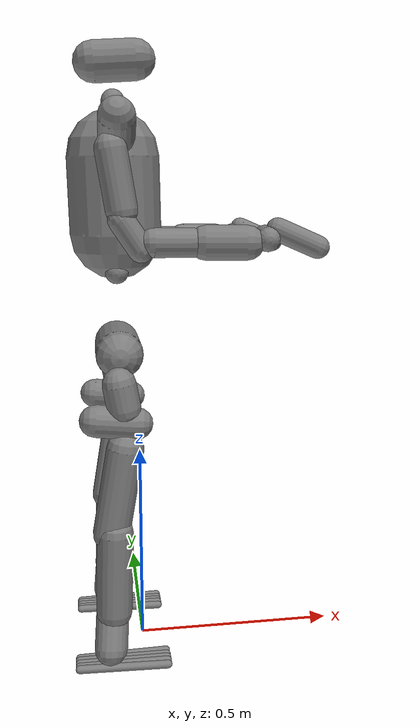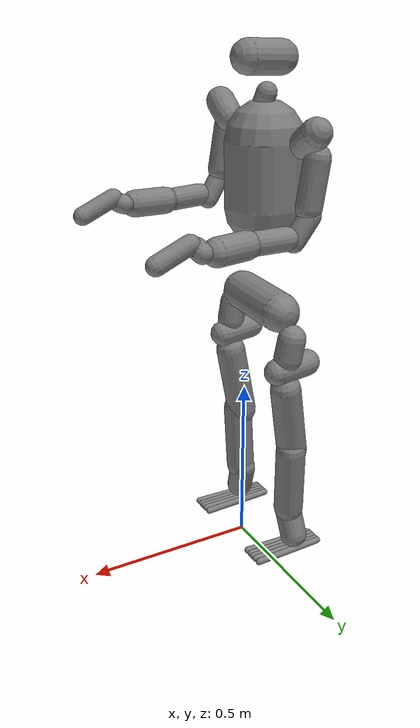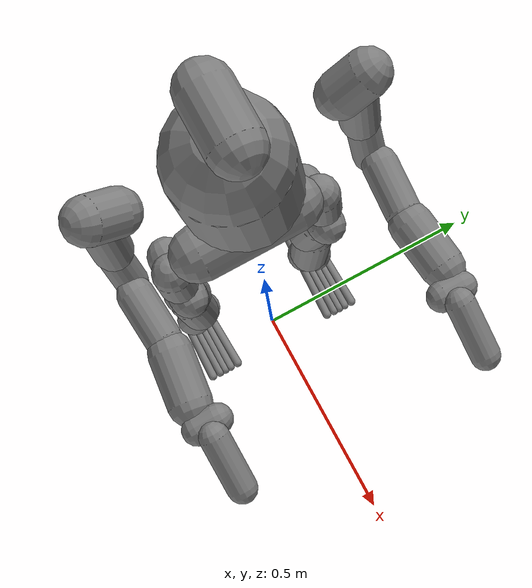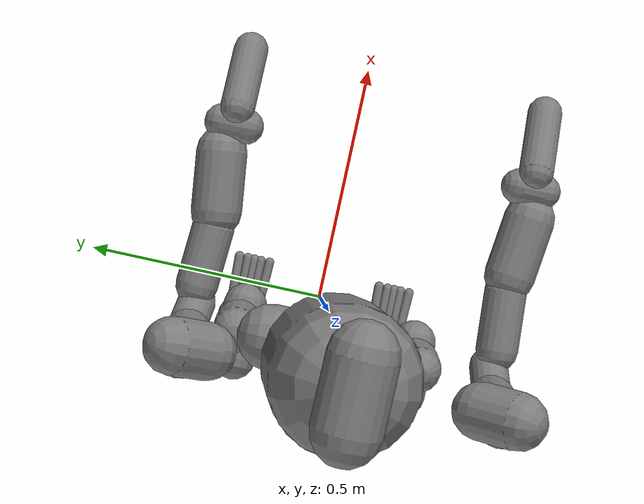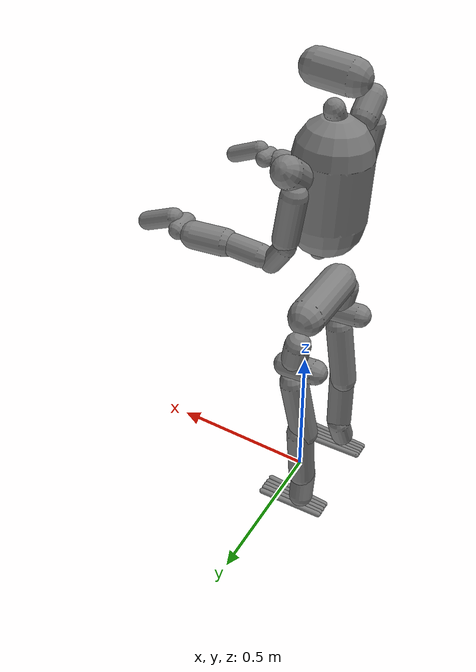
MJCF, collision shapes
<?xml version='1.0' encoding='utf-8'?>
<mujoco model="xhumanoid">
  <compiler angle="radian" meshdir="./meshes/" />

  <default>
    <default class="robot">
      <site size="0.01" group="5" rgba="1 0 0 1" />
      <general biastype="affine" biasprm="0 -1" />
      <default class="visual">
        <geom type="mesh" contype="0" conaffinity="0" group="2" material="black" />
      </default>
      <default class="collision">
        <geom type="capsule" group="3" />
        <default class="foot_sphere">
          <geom size="0.008 0 0" type="sphere" contype="1" />
        </default>
        <default class="foot_capsule">
          <!-- contype=1 (robot class) so the sim promotes it to (1,2) and feet collide
               with the floor (2,1); contype=2 matched the floor mask and disabled foot contact. -->
          <geom size="0.01 0 0" contype="1" />
        </default>
      </default>
      <default class="HEJ50">
        <joint actuatorfrcrange="-30 30" armature="0.0056" />
      </default>
      <default class="HEJ70">
        <joint actuatorfrcrange="-62 62" armature="0.0112" />
      </default>
      <default class="HEJ90">
        <joint actuatorfrcrange="-140 140" armature="0.05" />
      </default>
    </default>
  </default>

  <asset>
    <material name="black" rgba="0.25 0.25 0.25 1" />
    <mesh name="foot_2_visual" file="foot_2_visual.stl" />
    <mesh name="waist_yaw_visual" file="waist_yaw_visual.stl" />
    <mesh name="arm_j3_r_visual" file="arm_j3_r_visual.stl" />
    <mesh name="hand_output_2_visual" file="hand_output_2_visual.stl" />
    <mesh name="head_visual" file="head_visual.stl" />
    <mesh name="neck_j1_motor_visual" file="neck_j1_motor_visual.stl" />
    <mesh name="arm_j4_r_visual" file="arm_j4_r_visual.stl" />
    <mesh name="arm_j5_r_visual" file="arm_j5_r_visual.stl" />
    <mesh name="chest_2_01_visual" file="chest_2_01_visual.stl" />
    <mesh name="ankle_roll_motor_r_visual" file="ankle_roll_motor_r_visual.stl" />
    <mesh name="arm_j6_r_visual" file="arm_j6_r_visual.stl" />
    <mesh name="waist_bridge_2_visual" file="waist_bridge_2_visual.stl" />
    <mesh name="arm_j5_r_2_visual" file="arm_j5_r_2_visual.stl" />
    <mesh name="right_knee_visual" file="right_knee_visual.stl" />
    <mesh name="ankle_roll_motor_l_visual" file="ankle_roll_motor_l_visual.stl" />
    <mesh name="arm_j7_r_visual" file="arm_j7_r_visual.stl" />
    <mesh name="arm_j3_r_2_visual" file="arm_j3_r_2_visual.stl" />
    <mesh name="hip_yaw_left_visual" file="hip_yaw_left_visual.stl" />
    <mesh name="hiproll_motor_r_visual" file="hiproll_motor_r_visual.stl" />
    <mesh name="hiproll_motor_l_visual" file="hiproll_motor_l_visual.stl" />
    <mesh name="hand_output_visual" file="hand_output_visual.stl" />
    <mesh name="arm_j2_l_visual" file="arm_j2_l_visual.stl" />
    <mesh name="arm_j4_l_visual" file="arm_j4_l_visual.stl" />
    <mesh name="hip_yaw_left_2_visual" file="hip_yaw_left_2_visual.stl" />
    <mesh name="calf_l_visual" file="calf_l_visual.stl" />
    <mesh name="foot_visual" file="foot_visual.stl" />
    <mesh name="arm_j7_visual" file="arm_j7_visual.stl" />
    <mesh name="arm_j6_r_2_visual" file="arm_j6_r_2_visual.stl" />
    <mesh name="calf_r_visual" file="calf_r_visual.stl" />
    <mesh name="waist_pitch_visual" file="waist_pitch_visual.stl" />
    <mesh name="arm_j2_r_visual" file="arm_j2_r_visual.stl" />
    <mesh name="left_knee_visual" file="left_knee_visual.stl" />
  </asset>

  <worldbody>
    <body name="humanoid" pos="0 0 0.82515" quat="1 0 0 0">
      <joint name="root" type="free" />
      <body name="pelvis" childclass="robot" pos="0 0 0" quat="1 0 0 0">
        <inertial pos="-0.0491915 5.0515665e-05 -0.0524963" quat="-0.049806501 0.049419007 0.70508546 0.70564266" mass="7.13645" diaginertia="0.0518694 0.0469145 0.0175257" />
        <geom class="visual" pos="-0.0491915 5.0515665e-05 -0.0524963" quat="0.70710678 0 0 0.70710678" mesh="waist_bridge_2_visual" />
        <geom class="collision" size="0.0568495 0.101613" pos="-0.0495801 5.5890366e-05 -0.058934" quat="-0.012737116 0.012409726 0.70650442 0.70748517" />
        <body name="left_hip_pitch_link" pos="-0.049999999 0.116524 -0.087275" quat="1 0 0 0">
          <inertial pos="0.00073652791 0.036377037 -0.074965334" quat="-0.51735454 -0.056664037 -0.067107548 0.85125205" mass="2.87104" diaginertia="0.00640577 0.00603364 0.00399741" />
          <joint name="left_hip_pitch" class="HEJ90" pos="0 0 0" axis="8.4376589e-07 0.86602546 -0.49999989" range="-2.87979 2.87979" />
          <geom class="visual" pos="0.00073652791 0.036377037 -0.074965334" quat="0.70710678 -2.2557285e-09 2.9567847e-09 0.70710678" mesh="hiproll_motor_l_visual" />
          <geom class="collision" size="0.04 0.03" pos="0.0011908516 0.043478431 -0.060323155" quat="-0.18974169 -0.084141056 0.032995111 0.97766543" />
          <body name="left_hip_roll_link" pos="0.04505007 0.03754996 -0.090961502" quat="1 0 0 0">
            <inertial pos="-0.039869994 -2.6763956e-05 -0.043258433" quat="0.39204275 0.58848431 -0.58863226 -0.39179173" mass="0.633113" diaginertia="0.00187375 0.00141913 0.000954317" />
            <joint name="left_hip_roll" class="HEJ90" pos="0 0 0" axis="0.99999999 -8.9521515e-07 1.2913265e-07" range="-1.0472 1.29154" />
            <geom class="visual" pos="-0.039869994 -2.6763956e-05 -0.043258433" quat="0.7071071 2.0956387e-07 -3.0597422e-07 0.70710646" mesh="hip_yaw_left_visual" />
            <geom class="collision" size="0.0386053 0.047927" pos="-0.057573895 -1.4196603e-05 -0.031271693" quat="0.47567035 0.52342015 0.52370904 0.47486619" />
            <body name="left_hip_yaw_link" pos="-0.045049988 5.7724054e-08 -0.090999995" quat="1 0 0 0">
              <inertial pos="-0.016345485 -0.0038764391 -0.13183801" quat="0.7279393 -0.074920209 0.053980526 -0.67939491" mass="4.55978" diaginertia="0.0337572 0.033243 0.00706763" />
              <joint name="left_hip_yaw" class="HEJ70" pos="0 0 0" axis="-1.3634515e-07 -7.290809e-07 1" range="-2.53073 2.53073" />
              <geom class="visual" pos="-0.016345485 -0.0038764391 -0.13183801" quat="0.7071071 2.0956387e-07 -3.0597422e-07 0.70710646" mesh="left_knee_visual" />
              <geom class="collision" size="0.0443949 0.108576" pos="-0.010947689 -0.0041308093 -0.110907" quat="0.679444 0.044609887 0.076629511 0.72835" />
              <body name="left_knee_link" pos="-0.029999938 0.038550169 -0.19554998" quat="1 0 0 0">
                <inertial pos="0.0046275107 -0.041561196 -0.14877149" quat="0.034235367 0.9960399 0.076136802 -0.030588148" mass="2.43041" diaginertia="0.0159972 0.0150408 0.00391208" />
                <joint name="left_knee" class="HEJ90" pos="0 0 0" axis="9.0005144e-07 1 7.2992523e-07" range="-0.0872665 2.72271" />
                <geom class="visual" pos="0.0046275107 -0.041561196 -0.14877149" quat="0.7071071 2.1094726e-07 -3.0349774e-07 0.70710646" mesh="calf_l_visual" />
                <geom class="collision" size="0.0439052 0.102971" pos="0.0062565729 -0.044537417 -0.12163111" quat="-0.057844715 0.018075198 0.026335751 0.99781446" />
                <body name="left_ankle_pitch_link" pos="-2.7372142e-07 -0.0049498541 -0.20000043" quat="1 0 0 0">
                  <inertial pos="-0.0034486774 -0.034617237 -0.081943694" quat="0.0094062982 -0.028306976 -0.012897929 -0.9994718" mass="1.45033" diaginertia="0.00285097 0.002368 0.00178031" />
                  <joint name="left_ankle_pitch" class="HEJ70" pos="0 0 0" axis="9.0005886e-07 1 7.3261744e-07" range="-0.872665 0.872665" />
                  <geom class="visual" pos="-0.0034486774 -0.034617237 -0.081943694" quat="-0.7071071 -4.0313409e-07 1.1336195e-07 -0.70710646" mesh="ankle_roll_motor_l_visual" />
                  <geom class="collision" size="0.0400865 0.0443167" pos="-0.0037127 -0.040106344 -0.071751406" quat="0.001192522 -0.0356137 0.15992514 -0.98648578" />
                  <body name="left_ankle_roll_link" pos="0.02814991 -0.033599957 -0.094000028" quat="1 0 0 0">
                    <inertial pos="-0.011203518 4.2784047e-08 -0.044680496" quat="-0.50294945 0.4970335 0.49703342 -0.50294863" mass="0.778414" diaginertia="0.00327916 0.00327425 0.000667866" />
                    <joint name="left_ankle_roll" class="HEJ50" pos="0 0 0" axis="1 -9.0005856e-07 -3.9933581e-07" range="-0.261799 0.261799" />
                    <geom class="visual" pos="-0.011203518 4.2784047e-08 -0.044680496" quat="-0.7071071 -4.0324802e-07 1.1324802e-07 -0.70710646" mesh="foot_visual" />
                    <body name="left_foot" pos="-2.3161439e-08 4.2365282e-08 -0.058000001" quat="1 0 0 0">
                      <site name="left_foot" pos="0 0 0" quat="-1 -3.6521785e-07 -2.0506097e-07 4.5002935e-07" />
                      <geom name="left_foot1_collision" class="foot_capsule" fromto="-0.112 -0.025 0 0.102 -0.033 0" pos="0 0 0" quat="-1 -3.6521785e-07 -2.0506097e-07 4.5002935e-07" />
                      <geom name="left_foot2_collision" class="foot_capsule" fromto="-0.112 -0.014 0 0.102 -0.014 0" pos="0 0 0" quat="-1 -3.6521785e-07 -2.0506097e-07 4.5002935e-07" />
                      <geom name="left_foot3_collision" class="foot_capsule" fromto="-0.112 0 0 0.102 0 0" pos="0 0 0" quat="-1 -3.6521785e-07 -2.0506097e-07 4.5002935e-07" />
                      <geom name="left_foot4_collision" class="foot_capsule" fromto="-0.112 0.014 0 0.102 0.014 0" pos="0 0 0" quat="-1 -3.6521785e-07 -2.0506097e-07 4.5002935e-07" />
                      <geom name="left_foot5_collision" class="foot_capsule" fromto="-0.112 0.025 0 0.102 0.033 0" pos="0 0 0" quat="-1 -3.6521785e-07 -2.0506097e-07 4.5002935e-07" />
                    </body>
                  </body>
                </body>
              </body>
            </body>
          </body>
        </body>
        <body name="right_hip_pitch_link" pos="-0.05 -0.116524 -0.087275" quat="1 0 0 0">
          <inertial pos="0.00073140699 -0.036387215 -0.074968508" quat="0.056483725 0.51631886 0.85188549 -0.067197679" mass="2.87137" diaginertia="0.00640689 0.00603368 0.00399954" />
          <joint name="right_hip_pitch" class="HEJ90" pos="0 0 0" axis="8.4376589e-07 0.86602546 0.49999989" range="-2.87979 2.87979" />
          <geom class="visual" pos="0.00073140699 -0.036387215 -0.074968508" quat="0.70710678 2.2557285e-09 -2.9567847e-09 0.70710678" mesh="hiproll_motor_r_visual" />
          <geom class="collision" size="0.04 0.03" pos="0.0011904914 -0.043428625 -0.060427225" quat="0.18553329 -0.083250729 -0.032786932 0.97855594" />
          <body name="right_hip_roll_link" pos="0.04504995 -0.037550041 -0.090961513" quat="1 0 0 0">
            <inertial pos="-0.039870005 -2.6748778e-05 -0.043258412" quat="-0.39204326 -0.58848379 0.58863252 0.39179161" mass="0.633113" diaginertia="0.00187376 0.00141913 0.000954317" />
            <joint name="right_hip_roll" class="HEJ90" pos="0 0 0" axis="0.99999999 -8.9521515e-07 -1.4355635e-07" range="-1.29154 1.0472" />
            <geom class="visual" pos="-0.039870005 -2.6748778e-05 -0.043258412" quat="0.7071071 -2.0956387e-07 3.0597422e-07 0.70710646" mesh="hip_yaw_left_2_visual" />
            <geom class="collision" size="0.0386053 0.047927" pos="-0.057573904 -1.415493e-05 -0.031271593" quat="0.47567039 0.52342008 0.52370917 0.47486609" />
            <body name="right_hip_yaw_link" pos="-0.045050012 2.1798124e-08 -0.090999983" quat="1 0 0 0">
              <inertial pos="-0.016375714 0.0038815886 -0.132013" quat="0.72895148 0.074921572 0.054164632 0.67829396" mass="4.55417" diaginertia="0.0336273 0.0331145 0.0070469" />
              <joint name="right_hip_yaw" class="HEJ70" pos="0 0 0" axis="1.3634515e-07 7.290809e-07 1" range="-2.53073 2.53073" />
              <geom class="visual" pos="-0.016375714 0.0038815886 -0.132013" quat="0.7071071 -2.0956387e-07 3.0597422e-07 0.70710646" mesh="right_knee_visual" />
              <geom class="collision" size="0.0443938 0.108343" pos="-0.010929211 0.0041113291 -0.110903" quat="0.72847791 0.076877706 0.045135868 0.67924407" />
              <body name="right_knee_link" pos="-0.030000062 -0.038550115 -0.19554997" quat="1 0 0 0">
                <inertial pos="0.0046190867 0.041561188 -0.14876975" quat="0.99605718 0.034238986 0.030595551 -0.075905879" mass="2.43041" diaginertia="0.0159969 0.0150407 0.00391197" />
                <joint name="right_knee" class="HEJ90" pos="0 0 0" axis="9.11518e-07 1 -7.2887714e-07" range="-0.0872665 2.72271" />
                <geom class="visual" pos="0.0046190867 0.041561188 -0.14876975" quat="0.7071071 -2.0501438e-07 3.0661774e-07 0.70710646" mesh="calf_r_visual" />
                <geom class="collision" size="0.0439104 0.103297" pos="0.0062629843 0.044509906 -0.12149726" quat="0.057114091 0.018095998 -0.026616711 0.99784872" />
                <body name="right_ankle_pitch_link" pos="-3.1991704e-07 0.0049498544 -0.20000043" quat="1 0 0 0">
                  <inertial pos="-0.0030870316 0.034612644 -0.082061677" quat="-0.025694454 0.0083899447 0.99954502 0.013385161" mass="1.46466" diaginertia="0.00286006 0.00239341 0.00180421" />
                  <joint name="right_ankle_pitch" class="HEJ70" pos="0 0 0" axis="9.1099274e-07 1 -7.1632321e-07" range="-0.872665 0.872665" />
                  <geom class="visual" pos="-0.0030870316 0.034612644 -0.082061677" quat="0.7071071 -1.2147912e-08 4.9592875e-07 0.70710646" mesh="ankle_roll_motor_r_visual" />
                  <geom class="collision" size="0.0400441 0.0443445" pos="-0.0037242261 0.040190252 -0.0718374" quat="2.9989081e-05 0.035384138 0.1624396 0.98608384" />
                  <body name="right_ankle_roll_link" pos="0.028149945 0.033599907 -0.094000035" quat="1 0 0 0">
                    <inertial pos="-0.01120353 -2.1833904e-08 -0.044680492" quat="-0.50294916 0.4970338 0.49703299 -0.50294906" mass="0.778414" diaginertia="0.00327916 0.00327425 0.000667866" />
                    <joint name="right_ankle_roll" class="HEJ50" pos="0 0 0" axis="1 -9.1099323e-07 -6.8217779e-07" range="-0.261799 0.261799" />
                    <geom class="visual" pos="-0.01120353 -2.1833904e-08 -0.044680492" quat="-0.7071071 1.403833e-08 -4.9403833e-07 -0.70710646" mesh="foot_2_visual" />
                    <body name="right_foot" pos="-3.956635e-08 -4.1674658e-08 -0.058" quat="1 0 0 0">
                      <site name="right_foot" pos="0 0 0" quat="-1 3.5926445e-07 -3.3941126e-07 4.554965e-07" />
                      <geom name="right_foot1_collision" class="foot_capsule" fromto="-0.112 -0.025 0 0.102 -0.033 0" pos="0 0 0" quat="-1 3.5926445e-07 -3.3941126e-07 4.554965e-07" />
                      <geom name="right_foot2_collision" class="foot_capsule" fromto="-0.112 -0.014 0 0.102 -0.014 0" pos="0 0 0" quat="-1 3.5926445e-07 -3.3941126e-07 4.554965e-07" />
                      <geom name="right_foot3_collision" class="foot_capsule" fromto="-0.112 0 0 0.102 0 0" pos="0 0 0" quat="-1 3.5926445e-07 -3.3941126e-07 4.554965e-07" />
                      <geom name="right_foot4_collision" class="foot_capsule" fromto="-0.112 0.014 0 0.102 0.014 0" pos="0 0 0" quat="-1 3.5926445e-07 -3.3941126e-07 4.554965e-07" />
                      <geom name="right_foot5_collision" class="foot_capsule" fromto="-0.112 0.025 0 0.102 0.033 0" pos="0 0 0" quat="-1 3.5926445e-07 -3.3941126e-07 4.554965e-07" />
                    </body>
                  </body>
                </body>
              </body>
            </body>
          </body>
        </body>
        <body name="waist_roll_link" pos="0.00085 -2.8526536e-12 0" quat="1 0 0 0">
          <inertial pos="-0.0542205 -0.00311162 0.090319" quat="0.74303936 0.073450141 0.048527844 0.66343247" mass="1.75074" diaginertia="0.0044229 0.00379592 0.00253591" />
          <joint name="waist_roll" class="HEJ70" pos="0 0 0" axis="1 0 0" range="-0.698132 0.698132" />
          <geom class="visual" pos="-0.0542205 -0.00311162 0.090319" quat="0.70710678 0 0 0.70710678" mesh="waist_pitch_visual" />
          <body name="waist_pitch_link" pos="-0.05085 -0.04275 0.112" quat="1 0 0 0">
            <inertial pos="0.000276141 0.0406152 0.0310283" quat="0.0058952774 0.0016365423 0.6806775 0.73255765" mass="0.282742" diaginertia="0.000600949 0.000478319 0.000248544" />
            <joint name="waist_pitch" class="HEJ70" pos="0 0 0" axis="0 1 3.3560631e-09" range="-0.436332 0.610865" />
            <geom class="visual" pos="0.000276141 0.0406152 0.0310283" quat="0.70710678 0 0 0.70710678" mesh="waist_yaw_visual" />
            <geom class="collision" size="0.0284277 0.0427889" pos="0.000574438 0.042247 0.0251406" quat="0.010076784 0.0053843825 0.67031559 0.74198819" />
            <body name="torso_link" pos="0 0.04275 0.056" quat="1 0 0 0">
              <inertial pos="-0.00315236 0.00423006 0.156149" quat="0.029004 0.020068 0.99880999 0.0336846" mass="14.5548" diaginertia="0.208584 0.169668 0.124801" />
              <joint name="waist_yaw" class="HEJ70" pos="0 0 0" axis="0 -4.0178666e-17 1" range="-1.5708 1.5708" />
              <geom class="visual" pos="-0.00315236 0.00423006 0.156149" quat="0.70710678 1.4205304e-17 -1.4205304e-17 0.70710678" mesh="chest_2_01_visual" />
              <geom class="collision" size="0.110801 0.0910344" pos="-0.000747463 0.000414987 0.147051" quat="0.0011457297 -0.0094681576 -0.027556493 0.99957475" />
              <site name="imu" pos="0 -8.0357332e-18 0.2" quat="-1 -2.0089333e-17 0 0" />
              <body name="left_shoulder_pitch_link" pos="0 0.152633 0.258339" quat="1 0 0 0">
                <inertial pos="-0.00011514701 0.066342958 0.011846108" quat="0.34899169 0.3562216 0.65225731 -0.57085144" mass="1.52519" diaginertia="0.00216908 0.00202898 0.00149635" />
                <joint name="left_shoulder_pitch" class="HEJ70" pos="0 0 0" axis="-2.1193367e-17 0.93969277 0.34201975" range="-4.01426 1.5708" />
                <geom class="visual" pos="-0.00011514701 0.066342958 0.011846108" quat="-0.70710678 3.8393755e-07 -3.8393755e-07 -0.70710678" mesh="arm_j2_l_visual" />
                <geom class="collision" size="0.0409161 0.0297473" pos="0.000639414 0.06420131 0.02705719" quat="-0.079122159 0.036987102 -0.44583083 -0.89084595" />
                <body name="left_shoulder_roll_link" pos="0.03995 0.077080702 0.010431625" quat="1 0 0 0">
                  <inertial pos="-0.0407509 -7.36701e-06 -0.0979664" quat="-0.037046445 0.7048059 -0.70748415 0.036638505" mass="0.933252" diaginertia="0.00238888 0.00201464 0.000905322" />
                  <joint name="left_shoulder_roll" class="HEJ70" pos="0 0 0" axis="1 0 0" range="-0.261799 3.61283" />
                  <geom class="visual" pos="-0.0407509 -7.36701e-06 -0.0979664" quat="0.70710678 0 0 0.70710678" mesh="arm_j3_r_2_visual" />
                  <geom class="collision" size="0.0354106 0.0650845" pos="-0.0431094 -0.000133906 -0.0957919" quat="0.70558742 -0.05611302 -0.056056931 0.70416997" />
                  <body name="left_shoulder_yaw_link" pos="-0.038 0 -0.15135" quat="1 0 0 0">
                    <inertial pos="0.028695674 -0.0019951476 -0.0654337" quat="-0.0018838885 0.27220319 -0.028564378 -0.96181388" mass="0.900942" diaginertia="0.00130652 0.00116723 0.000603283" />
                    <joint name="left_shoulder_yaw" class="HEJ50" pos="0 0 0" axis="0 0 1" range="-2.53073 2.53073" />
                    <geom class="visual" pos="0.028695674 -0.0019951476 -0.0654337" quat="-0.70710651 0 0 -0.70710705" mesh="arm_j4_l_visual" />
                    <geom class="collision" size="0.0293826 0.0388128" pos="0.024294943 0.0016447373 -0.0598915" quat="-0.00039511088 0.29172536 -0.040060731 -0.95566275" />
                    <body name="left_elbow_link" pos="0.036499989 -0.036049978 -0.078" quat="1 0 0 0">
                      <inertial pos="0.0798851 0.0361645 5.61526e-06" quat="0.70569724 0.042450573 -0.70627918 0.036865451" mass="0.809734" diaginertia="0.00110904 0.000959583 0.000582505" />
                      <joint name="left_elbow" class="HEJ50" pos="0 0 0" axis="0 1 0" range="-0.925025 3.35103" />
                      <geom class="visual" pos="0.0798851 0.0361645 5.61526e-06" quat="0.70710678 0 0 0.70710678" mesh="arm_j5_r_2_visual" />
                      <geom class="collision" size="0.0322981 0.0458833" pos="0.0820749 0.0367885 -0.000168402" quat="0.020517285 0.70563068 -0.025309716 0.70783035" />
                      <body name="left_wrist_roll_link" pos="0.12035 0.036 6.9388939e-18" quat="1 0 0 0">
                        <inertial pos="0.067687301 0.0094429453 4.9358397e-05" quat="-0.070633123 -0.70316021 -0.073080338 0.70373002" mass="1.34224" diaginertia="0.00270584 0.00236652 0.00150435" />
                        <joint name="left_wrist_roll" class="HEJ50" pos="0 0 0" axis="1 -4.4377618e-18 1.5252148e-08" range="-2.53073 2.53073" />
                        <geom class="visual" pos="0.067687301 0.0094429453 4.9358397e-05" quat="0.70710678 9.1525492e-08 -9.1525492e-08 0.70710678" mesh="arm_j6_r_2_visual" />
                        <geom class="collision" size="0.038822 0.0457788" pos="0.076401701 0.0041725752 -9.5468084e-05" quat="-0.042261783 0.70443022 0.044522293 0.70711369" />
                        <body name="left_wrist_pitch_link" pos="0.1665 0.043000008 -1.5784863e-08" quat="1 0 0 0">
                          <inertial pos="-0.000112869 -0.043099001 0.0042771089" quat="0.71515147 -0.69865957 -0.016852997 -0.012212922" mass="0.665084" diaginertia="0.000418986 0.000382837 0.00037533" />
                          <joint name="left_wrist_pitch" class="HEJ50" pos="0 0 0" axis="-3.4841409e-17 1 2.5791449e-07" range="-1.0472 1.0472" />
                          <geom class="visual" pos="-0.000112869 -0.043099001 0.0042771089" quat="0.70710678 9e-08 -9e-08 0.70710678" mesh="arm_j7_visual" />
                          <geom class="collision" size="0.0274352 0.0183193" pos="-0.000116782 -0.042680802 0.009347389" quat="0.053300573 -0.052955509 0.74595468 0.66174495" />
                          <body name="left_wrist_yaw_link" pos="2.2272069e-18 -0.043000008 0.033149989" quat="1 0 0 0">
                            <inertial pos="0.0593425 5.0018414e-07 -0.0202513" quat="0.60053711 -0.37320996 -0.37308411 0.60073101" mass="0.233204" diaginertia="0.000401837 0.000392718 0.000121263" />
                            <joint name="left_wrist_yaw" class="HEJ50" pos="0 0 0" axis="2.1991742e-17 -2.5455844e-07 1" range="-1.39626 1.39626" />
                            <geom class="visual" pos="0.0593425 5.0018414e-07 -0.0202513" quat="0.70710678 9e-08 -9e-08 0.70710678" mesh="hand_output_2_visual" />
                            <geom class="collision" size="0.0262118 0.0504738" pos="0.0715611 2.8011009e-06 -0.0240845" quat="0.39065973 0.58897875 0.59069765 0.38931388" />
                          </body>
                        </body>
                      </body>
                    </body>
                  </body>
                </body>
              </body>
              <body name="right_shoulder_pitch_link" pos="0 -0.152633 0.258339" quat="1 0 0 0">
                <inertial pos="0.000140898 -0.066553625 0.011771109" quat="-0.34425723 0.35694138 -0.6537573 -0.57156032" mass="1.53789" diaginertia="0.00218683 0.00204574 0.00151217" />
                <joint name="right_shoulder_pitch" class="HEJ70" pos="0 0 0" axis="0 0.93969238 -0.34202075" range="-4.01426 1.5708" />
                <geom class="visual" pos="0.000140898 -0.066553625 0.011771109" quat="-0.70710678 3.8943884e-07 -3.8943884e-07 -0.70710678" mesh="arm_j2_r_visual" />
                <geom class="collision" size="0.0408814 0.0297408" pos="0.000712482 -0.064456906 0.026747891" quat="-0.035716599 0.077248374 -0.8926506 -0.44264198" />
                <body name="right_shoulder_roll_link" pos="0.03995 -0.07708069 0.010431707" quat="1 0 0 0">
                  <inertial pos="-0.0407509 -7.36701e-06 -0.0979664" quat="-0.037046445 0.7048059 -0.70748415 0.036638505" mass="0.933252" diaginertia="0.00238888 0.00201464 0.000905322" />
                  <joint name="right_shoulder_roll" class="HEJ70" pos="0 0 0" axis="1 0 0" range="-3.61283 0.261799" />
                  <geom class="visual" pos="-0.0407509 -7.36701e-06 -0.0979664" quat="0.70710678 0 0 0.70710678" mesh="arm_j3_r_visual" />
                  <geom class="collision" size="0.0354082 0.0650906" pos="-0.0431147 -0.000133697 -0.0957848" quat="0.70559379 -0.056121119 -0.0561259 0.70415745" />
                  <body name="right_shoulder_yaw_link" pos="-0.038 0 -0.15135" quat="1 0 0 0">
                    <inertial pos="0.028638723 0.0019892913 -0.0652659" quat="0.0031383095 0.27179043 0.027567084 -0.96195643" mass="0.903604" diaginertia="0.0013178 0.00117896 0.000604475" />
                    <joint name="right_shoulder_yaw" class="HEJ50" pos="0 0 0" axis="0 0 1" range="-2.53073 2.53073" />
                    <geom class="visual" pos="0.028638723 0.0019892913 -0.0652659" quat="-0.70710651 0 0 -0.70710705" mesh="arm_j4_r_visual" />
                    <geom class="collision" size="0.0293217 0.0388637" pos="0.024105601 -0.00175871 -0.0597164" quat="-0.0012188839 0.29023332 0.038625131 -0.95617532" />
                    <body name="right_elbow_link" pos="0.036499963 0.036049994 -0.078" quat="1 0 0 0">
                      <inertial pos="0.0798851 -0.0361645 -5.61526e-06" quat="-0.036865451 -0.70627918 0.042450573 -0.70569724" mass="0.809734" diaginertia="0.00110904 0.000959583 0.000582505" />
                      <joint name="right_elbow" class="HEJ50" pos="0 0 0" axis="0 1 0" range="-0.925025 3.35103" />
                      <geom class="visual" pos="0.0798851 -0.0361645 -5.61526e-06" quat="-0.70710678 0 0 -0.70710678" mesh="arm_j5_r_visual" />
                      <geom class="collision" size="0.0322991 0.0458942" pos="0.0820651 -0.0367827 0.000167902" quat="0.025332173 -0.70786605 -0.020367841 -0.70559839" />
                      <body name="right_wrist_roll_link" pos="0.12035 -0.036 6.9388939e-18" quat="1 0 0 0">
                        <inertial pos="0.067687001 -0.0094429521 -4.924839e-05" quat="-0.70316153 0.070628684 0.70372987 0.073073449" mass="1.34224" diaginertia="0.00270584 0.00236652 0.00150435" />
                        <joint name="right_wrist_roll" class="HEJ50" pos="0 0 0" axis="1 4.4377618e-18 1.5252148e-08" range="-2.53073 2.53073" />
                        <geom class="visual" pos="0.067687001 -0.0094429521 -4.924839e-05" quat="-0.70710678 -9.1525492e-08 9.1525492e-08 -0.70710678" mesh="arm_j6_r_visual" />
                        <geom class="collision" size="0.0387983 0.0458203" pos="0.076345301 -0.0041643528 0.0001138519" quat="-0.044653433 -0.70676506 0.040746167 -0.70486095" />
                        <body name="right_wrist_pitch_link" pos="0.1665 -0.043000007 2.0863829e-08" quat="1 0 0 0">
                          <inertial pos="-7.30885e-05 0.043099 0.00427712" quat="-0.71385834 -0.69959359 0.020031824 -0.023954174" mass="0.665084" diaginertia="0.000419065 0.000382763 0.000375336" />
                          <joint name="right_wrist_pitch" class="HEJ50" pos="0 0 0" axis="0 1 0" range="-1.0472 1.0472" />
                          <geom class="visual" pos="-7.30885e-05 0.043099 0.00427712" quat="-0.70710678 0 0 -0.70710678" mesh="arm_j7_r_visual" />
                          <geom class="collision" size="0.0274302 0.0183319" pos="-0.000220337 0.0426762 0.00933236" quat="-0.026289447 0.023344547 -0.66054538 -0.74996247" />
                          <body name="right_wrist_yaw_link" pos="0 0.043 0.03315" quat="1 0 0 0">
                            <inertial pos="0.0593425 4.9522816e-07 -0.0202513" quat="0.60053747 -0.3732095 -0.37308386 0.60073109" mass="0.233204" diaginertia="0.000401837 0.000392718 0.000121263" />
                            <joint name="right_wrist_yaw" class="HEJ50" pos="0 0 0" axis="0 0 0.99999999" range="-1.39626 1.39626" />
                            <geom class="visual" pos="0.0593425 4.9522816e-07 -0.0202513" quat="-0.70710678 -0 0 -0.70710678" mesh="hand_output_visual" />
                            <geom class="collision" size="0.0262118 0.0504738" pos="0.0715611 2.7952102e-06 -0.0240845" quat="-0.39065946 -0.58897883 -0.5906979 -0.38931365" />
                          </body>
                        </body>
                      </body>
                    </body>
                  </body>
                </body>
              </body>
              <body name="head_yaw_link" pos="0 -1.233485e-17 0.307" quat="1 0 0 0">
                <inertial pos="2.2864581e-05 -0.0057562 0.0437477" quat="0.29139297 0.95658864 -0.0048910563 0.0020944497" mass="0.697313" diaginertia="0.000488331 0.000442374 0.000404879" />
                <joint name="head_yaw" class="HEJ50" pos="0 0 0" axis="-8.9524027e-34 -4.0178667e-17 0.99999999" range="-0.785398 0.785398" />
                <geom class="visual" pos="2.2864581e-05 -0.0057562 0.0437477" quat="0.70710678 1.4205304e-17 -1.4205304e-17 0.70710678" mesh="neck_j1_motor_visual" />
                <geom class="collision" size="0.0285228 0.0194249" pos="-3.6725821e-05 -0.00619534 0.0418292" quat="-0.0040969784 0.0011532916 0.25558739 0.96677659" />
                <body name="head" pos="-1.2803381e-10 -0.03815 0.046" quat="1 0 0 0">
                  <inertial pos="-0.000574932 0.0340504 0.10023" quat="0.61122297 0.38048098 0.53062298 0.44730298" mass="0.970646" diaginertia="0.00325356 0.00295725 0.00194333" />
                  <joint name="head_pitch" class="HEJ50" pos="0 0 0" axis="0 1 0" range="-0.785398 0.785398" />
                  <geom class="visual" pos="-0.000574932 0.0340504 0.10023" quat="0.70710678 0 0 0.70710678" mesh="head_visual" />
                  <geom class="collision" size="0.0481852 0.04921" pos="0.00530879 0.0347922 0.103272" quat="-0.095452689 0.67424762 -0.09202769 0.72650522" />
                </body>
              </body>
            </body>
          </body>
        </body>
      </body>
    </body>
  </worldbody>

  <actuator>
    <motor name="left_hip_pitch" joint="left_hip_pitch" ctrlrange="-140 140"/>
    <motor name="left_hip_roll" joint="left_hip_roll" ctrlrange="-140 140"/>
    <motor name="left_hip_yaw" joint="left_hip_yaw" ctrlrange="-62 62"/>
    <motor name="left_knee" joint="left_knee" ctrlrange="-140 140"/>
    <motor name="left_ankle_pitch" joint="left_ankle_pitch" ctrlrange="-62 62"/>
    <motor name="left_ankle_roll" joint="left_ankle_roll" ctrlrange="-30 30"/>
    <motor name="right_hip_pitch" joint="right_hip_pitch" ctrlrange="-140 140"/>
    <motor name="right_hip_roll" joint="right_hip_roll" ctrlrange="-140 140"/>
    <motor name="right_hip_yaw" joint="right_hip_yaw" ctrlrange="-62 62"/>
    <motor name="right_knee" joint="right_knee" ctrlrange="-140 140"/>
    <motor name="right_ankle_pitch" joint="right_ankle_pitch" ctrlrange="-62 62"/>
    <motor name="right_ankle_roll" joint="right_ankle_roll" ctrlrange="-30 30"/>
    <motor name="waist_roll" joint="waist_roll" ctrlrange="-62 62"/>
    <motor name="waist_pitch" joint="waist_pitch" ctrlrange="-62 62"/>
    <motor name="waist_yaw" joint="waist_yaw" ctrlrange="-62 62"/>
    <motor name="left_shoulder_pitch" joint="left_shoulder_pitch" ctrlrange="-62 62"/>
    <motor name="left_shoulder_roll" joint="left_shoulder_roll" ctrlrange="-62 62"/>
    <motor name="left_shoulder_yaw" joint="left_shoulder_yaw" ctrlrange="-30 30"/>
    <motor name="left_elbow" joint="left_elbow" ctrlrange="-30 30"/>
    <motor name="left_wrist_roll" joint="left_wrist_roll" ctrlrange="-30 30"/>
    <motor name="left_wrist_pitch" joint="left_wrist_pitch" ctrlrange="-30 30"/>
    <motor name="left_wrist_yaw" joint="left_wrist_yaw" ctrlrange="-30 30"/>
    <motor name="right_shoulder_pitch" joint="right_shoulder_pitch" ctrlrange="-62 62"/>
    <motor name="right_shoulder_roll" joint="right_shoulder_roll" ctrlrange="-62 62"/>
    <motor name="right_shoulder_yaw" joint="right_shoulder_yaw" ctrlrange="-30 30"/>
    <motor name="right_elbow" joint="right_elbow" ctrlrange="-30 30"/>
    <motor name="right_wrist_roll" joint="right_wrist_roll" ctrlrange="-30 30"/>
    <motor name="right_wrist_pitch" joint="right_wrist_pitch" ctrlrange="-30 30"/>
    <motor name="right_wrist_yaw" joint="right_wrist_yaw" ctrlrange="-30 30"/>
    <motor name="head_yaw" joint="head_yaw" ctrlrange="-30 30"/>
    <motor name="head_pitch" joint="head_pitch" ctrlrange="-30 30"/>
  </actuator>
</mujoco>
